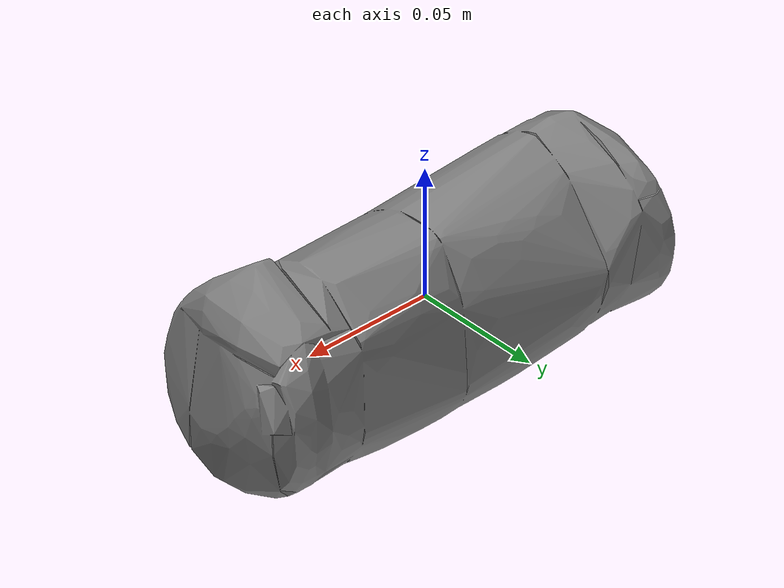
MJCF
<mujoco model="pencil_case_Olive_Kids_Robots_Pencil_Case_M">
  <default>
    <default class="visual">
      <geom group="2" type="mesh" contype="0" conaffinity="0" />
    </default>
    <default class="collision">
      <geom group="3" type="mesh" />
    </default>
  </default>
  <asset>
    <mesh file="pencil_case_Olive_Kids_Robots_Pencil_Case_M.stl" />
    <mesh file="pencil_case_Olive_Kids_Robots_Pencil_Case_M_collision_0.stl" />
    <mesh file="pencil_case_Olive_Kids_Robots_Pencil_Case_M_collision_1.stl" />
    <mesh file="pencil_case_Olive_Kids_Robots_Pencil_Case_M_collision_2.stl" />
    <mesh file="pencil_case_Olive_Kids_Robots_Pencil_Case_M_collision_3.stl" />
    <mesh file="pencil_case_Olive_Kids_Robots_Pencil_Case_M_collision_4.stl" />
    <mesh file="pencil_case_Olive_Kids_Robots_Pencil_Case_M_collision_5.stl" />
    <mesh file="pencil_case_Olive_Kids_Robots_Pencil_Case_M_collision_6.stl" />
    <mesh file="pencil_case_Olive_Kids_Robots_Pencil_Case_M_collision_7.stl" />
    <mesh file="pencil_case_Olive_Kids_Robots_Pencil_Case_M_collision_8.stl" />
    <mesh file="pencil_case_Olive_Kids_Robots_Pencil_Case_M_collision_9.stl" />
    <mesh file="pencil_case_Olive_Kids_Robots_Pencil_Case_M_collision_10.stl" />
    <mesh file="pencil_case_Olive_Kids_Robots_Pencil_Case_M_collision_11.stl" />
    <mesh file="pencil_case_Olive_Kids_Robots_Pencil_Case_M_collision_12.stl" />
    <mesh file="pencil_case_Olive_Kids_Robots_Pencil_Case_M_collision_13.stl" />
    <mesh file="pencil_case_Olive_Kids_Robots_Pencil_Case_M_collision_14.stl" />
    <mesh file="pencil_case_Olive_Kids_Robots_Pencil_Case_M_collision_15.stl" />
  </asset>
  <worldbody>
    <body name="pencil_case_Olive_Kids_Robots_Pencil_Case_M">
      <geom mesh="pencil_case_Olive_Kids_Robots_Pencil_Case_M" class="visual" />
      <geom mesh="pencil_case_Olive_Kids_Robots_Pencil_Case_M_collision_0" class="collision" />
      <geom mesh="pencil_case_Olive_Kids_Robots_Pencil_Case_M_collision_1" class="collision" />
      <geom mesh="pencil_case_Olive_Kids_Robots_Pencil_Case_M_collision_2" class="collision" />
      <geom mesh="pencil_case_Olive_Kids_Robots_Pencil_Case_M_collision_3" class="collision" />
      <geom mesh="pencil_case_Olive_Kids_Robots_Pencil_Case_M_collision_4" class="collision" />
      <geom mesh="pencil_case_Olive_Kids_Robots_Pencil_Case_M_collision_5" class="collision" />
      <geom mesh="pencil_case_Olive_Kids_Robots_Pencil_Case_M_collision_6" class="collision" />
      <geom mesh="pencil_case_Olive_Kids_Robots_Pencil_Case_M_collision_7" class="collision" />
      <geom mesh="pencil_case_Olive_Kids_Robots_Pencil_Case_M_collision_8" class="collision" />
      <geom mesh="pencil_case_Olive_Kids_Robots_Pencil_Case_M_collision_9" class="collision" />
      <geom mesh="pencil_case_Olive_Kids_Robots_Pencil_Case_M_collision_10" class="collision" />
      <geom mesh="pencil_case_Olive_Kids_Robots_Pencil_Case_M_collision_11" class="collision" />
      <geom mesh="pencil_case_Olive_Kids_Robots_Pencil_Case_M_collision_12" class="collision" />
      <geom mesh="pencil_case_Olive_Kids_Robots_Pencil_Case_M_collision_13" class="collision" />
      <geom mesh="pencil_case_Olive_Kids_Robots_Pencil_Case_M_collision_14" class="collision" />
      <geom mesh="pencil_case_Olive_Kids_Robots_Pencil_Case_M_collision_15" class="collision" />
    </body>
  </worldbody>
</mujoco>
